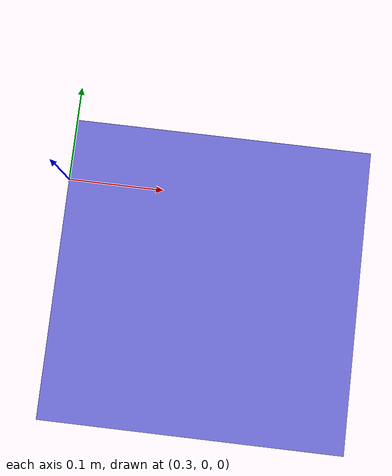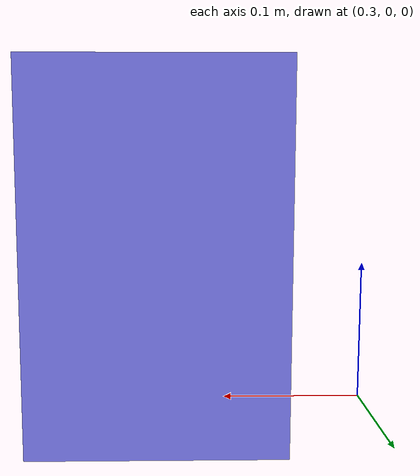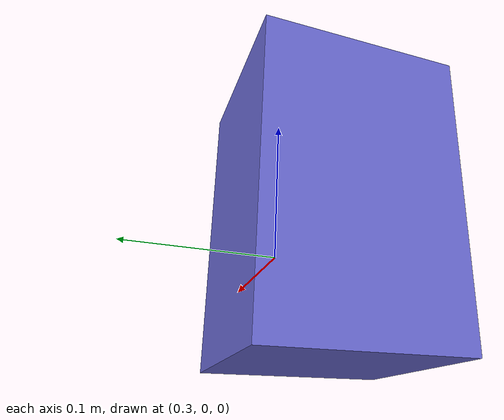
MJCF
<mujoco model="box_small">
  <worldbody>
    <body name="box_small" pos="0.45 -0.1 0.1">
      <freejoint/>
      <inertial pos="0 0 0.15" mass="0.5" diaginertia="0.002 0.002 0.001"/>
      <geom name="box_small"
            type="box"
            size="0.1 0.1 0.15"
            rgba="0.4 0.4 0.8 1"
            contype="1" conaffinity="1"/>
    </body>
  </worldbody>
</mujoco>
